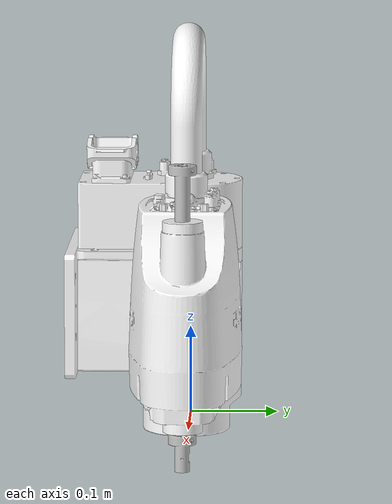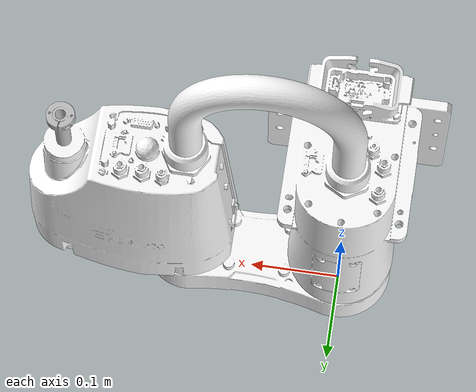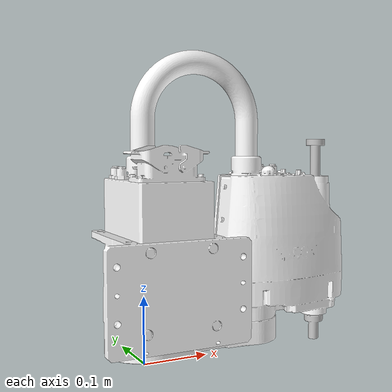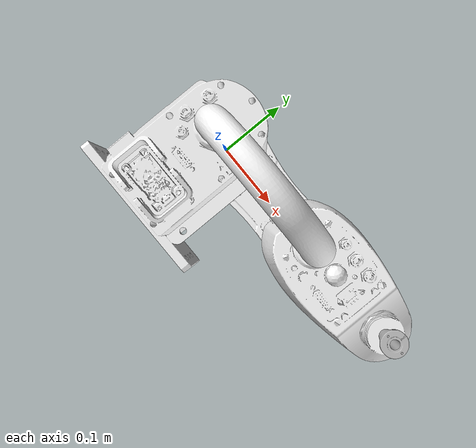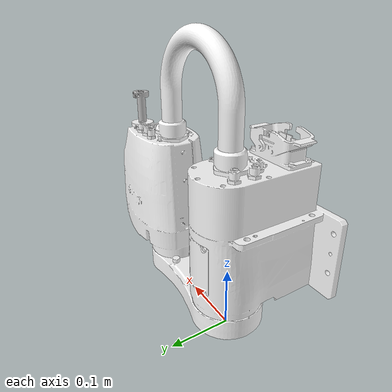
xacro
<?xml version="1.0"?>
<robot name="EPSON_GX4-C301SM" xmlns:xacro="http://www.ros.org/wiki/xacro">

<!-- arg model for xacro files -->
  <xacro:arg name="rb_model" default="GX4-C301SM" />

<!-- include xacro -->
  <xacro:include filename="$(find epson_robot_description)/models/$(arg rb_model)/urdf/epson_robot_property.xacro" />
  <xacro:include filename="$(find epson_robot_description)/models/$(arg rb_model)/urdf/epson_robot_transmission.xacro" />
  <xacro:include filename="$(find epson_robot_description)/models/$(arg rb_model)/urdf/epson_robot.ros2_control.xacro" />

<!-- world link -->
  <link name="world"/>

<!-- base link -->
  <link name="${BASE_LINK}">
    <visual>
      <origin
        xyz="0 0 0"
        rpy="1.57 0 0" />
      <geometry>
        <mesh
          filename="package://${BASE_MESH}" scale="0.001 0.001 0.001" />
      </geometry>
      <material
        name="">
        <color
          rgba="1 1 1 1" />
      </material>
    </visual>
    <collision>
      <origin
        xyz="0 0 0"
        rpy="1.57 0 0" />
      <geometry>
        <mesh
          filename="package://${BASE_MESH}" scale="0.001 0.001 0.001"/>
      </geometry>
    </collision>
  </link>
  <joint name="${BASE_JOINT}" type="fixed">
    <origin
      xyz="0 -0.139 0.138"
      rpy="0 0 0" />
    <parent
      link="world"/>
    <child
      link="${BASE_LINK}" />
  </joint>

<!--link 1-->
  <link name="${LINK_1}">
    <visual>
      <origin
        xyz="-0.139 0 0.096"
        rpy="1.57 0 -1.57" />
      <geometry>
        <mesh
          filename="package://${LINK1_MESH}" scale="0.001 0.001 0.001"/>
      </geometry>
      <material
        name="">
        <color
          rgba="1 1 1 1" />
      </material>
    </visual>
    <collision>
      <origin
        xyz="-0.139 0 0.096"
        rpy="1.57 0 -1.57" />
      <geometry>
        <mesh
          filename="package://${LINK1_MESH}" scale="0.001 0.001 0.001"/>
      </geometry>
    </collision>
  </link>
  <xacro:transmission_joint name="${JOINT_1}" />
  <joint name="${JOINT_1}" type="revolute">
    <origin
      xyz="0 0.139 -0.096"
      rpy="0 0 0" />
    <parent
      link="${BASE_LINK}" />
    <child
      link="${LINK_1}" />
    <axis
      xyz="0 0 1" />
    <limit
      lower="${joint1_limit_min_rad}"
      upper="${joint1_limit_max_rad}"
      velocity="${joint1_speed_limit_rad}"
      effort="${joint1_effort}" />
  </joint>

<!--link 2-->
  <link name="${LINK_2}">
    <visual>
      <origin
        xyz="-0.309 0 0.096"
        rpy="1.57 0 -1.57" />
      <geometry>
        <mesh
          filename="package://${LINK2_MESH}" scale="0.001 0.001 0.001"/>
      </geometry>
      <material
        name="">
        <color
          rgba="1 1 1 1" />
      </material>
    </visual>
    <collision>
      <origin
        xyz="-0.309 0 0.096"
        rpy="1.57 0 -1.57" />
      <geometry>
        <mesh
          filename="package://${LINK2_MESH}" scale="0.001 0.001 0.001"/>
      </geometry>
    </collision>
  </link>
  <xacro:transmission_joint name="${JOINT_2}" />
  <joint name="${JOINT_2}" type="revolute" >
    <origin
      xyz="0.17 0 0"
      rpy="0 0 0" />
    <parent
      link="${LINK_1}" />
    <child
      link="${LINK_2}" />
    <axis
      xyz="0 0 1" />
    <limit
      lower="${joint2_limit_min_rad}"
      upper="${joint2_limit_max_rad}"
      velocity="${joint2_speed_limit_rad}"
      effort="${joint2_effort}" />
  </joint>

<!--link 3-->
  <link name="${LINK_3}">
    <visual>
      <origin
        xyz="0 0 0"
        rpy="0 0 0" />
      <geometry>
        <cylinder radius="0.0" length="0.0"/>
      </geometry>
      <material
        name="">
        <color
          rgba="1 1 1 0.5" />
      </material>
    </visual>
    <collision>
      <origin
        xyz="0 0 0"
        rpy="0 0 0" />
      <geometry>
        <cylinder radius="0.0" length="0.0"/>
      </geometry>
    </collision>
  </link>
  <xacro:transmission_joint name="${JOINT_3}" />
  <joint name="${JOINT_3}" type="prismatic" >
    <origin
      xyz="0.13 0 -0.042"
      rpy="0 0 0" />
    <parent
      link="${LINK_2}" />
    <child
      link="${LINK_3}" />
    <axis
      xyz="0 0 1" />
    <limit
      lower="${joint3_limit_min_meter}"
      upper="${joint3_limit_max_meter}"
      velocity="${joint3_speed_limit_meter}"
      effort="${joint3_effort}" />
  </joint>

<!--link 4-->
  <link name="${LINK_4}">
    <visual>
      <origin
        xyz="0 -0.439 0.138"
        rpy="1.57 0 0" />
      <geometry>
        <mesh
          filename="package://${LINK4_MESH}" scale="0.001 0.001 0.001"/>
      </geometry>
      <material
        name="">
        <color
          rgba="0.75 0.75 0.75 1" />
      </material>
    </visual>
    <collision>
      <origin
        xyz="0 -0.439 0.138"
        rpy="1.57 0 0" />
      <geometry>
        <mesh
          filename="package://${LINK4_MESH}" scale="0.001 0.001 0.001"/>
      </geometry>
    </collision>
  </link>
  <xacro:transmission_joint name="${JOINT_4}" />
  <joint name="${JOINT_4}" type="revolute">
    <origin
      xyz="0 0 0"
      rpy="0 0 0"/>
    <parent
      link="${LINK_3}" />
    <child
      link="${LINK_4}" />
    <axis
      xyz="0 0 1" />
    <limit
      lower="${joint4_limit_min_rad}"
      upper="${joint4_limit_max_rad}"
      velocity="${joint4_speed_limit_rad}"
      effort="${joint4_effort}" />
  </joint>

</robot>

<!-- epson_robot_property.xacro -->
<robot name="EPSON_GX4-C301SM" xmlns:xacro="http://www.ros.org/wiki/xacro">

<!-- Links -->
  <xacro:property name="BASE_LINK" value="base_link" />
<!-- Arm Links -->
  <xacro:property name="LINK_1" value="j1_link" />
  <xacro:property name="LINK_2" value="j2_link" />
  <xacro:property name="LINK_3" value="j3_link" />
  <xacro:property name="LINK_4" value="j4_link" />

<!-- Joints -->
  <xacro:property name="BASE_JOINT" value="base_joint" />
<!-- Arm Joints -->
  <xacro:property name="JOINT_1" value="j1_joint" />
  <xacro:property name="JOINT_2" value="j2_joint" />
  <xacro:property name="JOINT_3" value="j3_joint" />
  <xacro:property name="JOINT_4" value="j4_joint" />

<!-- Meshes -->
  <xacro:property name="BASE_MESH"  value="epson_robot_description/models/$(arg rb_model)/meshes/base.stl" />
  <xacro:property name="LINK1_MESH" value="epson_robot_description/models/$(arg rb_model)/meshes/j1.stl" />
  <xacro:property name="LINK2_MESH" value="epson_robot_description/models/$(arg rb_model)/meshes/j2.stl" />
  <xacro:property name="LINK3_MESH" value="epson_robot_description/models/$(arg rb_model)/meshes/j3.stl" />
  <xacro:property name="LINK4_MESH" value="epson_robot_description/models/$(arg rb_model)/meshes/j4.stl" />

<!-- Joint Limits(rad) -->
<!-- Max -->
  <xacro:property name="joint1_limit_max_rad" value="3.57792509974643" />
  <xacro:property name="joint2_limit_max_rad" value="2.35619449019234" />
  <!-- J3's unit is meter -->
  <xacro:property name="joint3_limit_max_meter" value="0" />
  <xacro:property name="joint4_limit_max_rad" value="6.28318530717958" />

<!-- Min -->
  <xacro:property name="joint1_limit_min_rad" value="-0.436332446156636" />
  <xacro:property name="joint2_limit_min_rad" value="-2.35619449019234" />
  <!-- J3's unit is meter -->
  <xacro:property name="joint3_limit_min_meter" value="-0.150000029296875" />
  <xacro:property name="joint4_limit_min_rad" value="-6.28318530717958" />

<!-- Speed Limit(rad) -->
  <xacro:property name="joint1_speed_limit_rad" value="7.85398163397448" />
  <xacro:property name="joint2_speed_limit_rad" value="12.5663706143591" />
  <!-- J3's unit is meter/sec -->
  <xacro:property name="joint3_speed_limit_meter" value="1.152" />
  <xacro:property name="joint4_speed_limit_rad" value="55.1156600636707" />

<!-- Effort. 0.0 is enough but robot_state_publisher and move_group require them. -->
  <xacro:property name="joint1_effort" value="0.0" />
  <xacro:property name="joint2_effort" value="0.0" />
  <xacro:property name="joint3_effort" value="0.0" />
  <xacro:property name="joint4_effort" value="0.0" />

  <xacro:property name="true" value="1" />
  <xacro:property name="false" value="0" />

  <xacro:property name="revolute" value="0" />
  <xacro:property name="prismatic" value="1" />
</robot>
